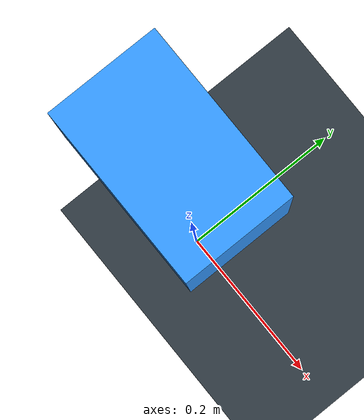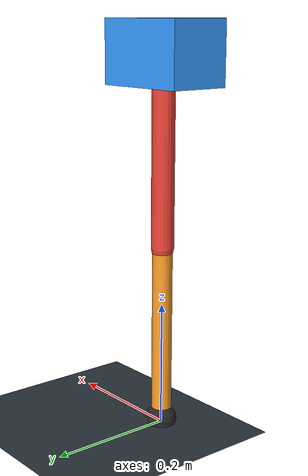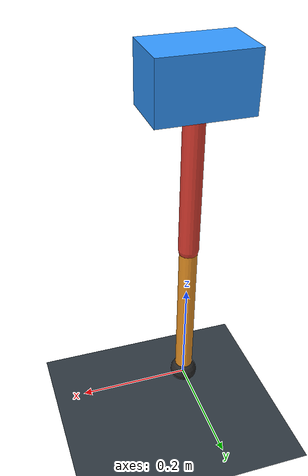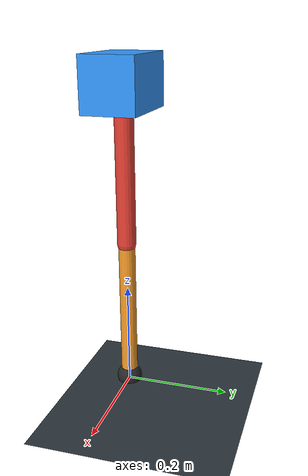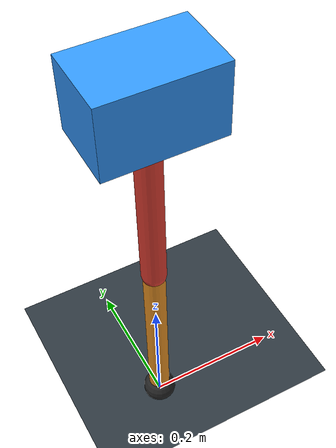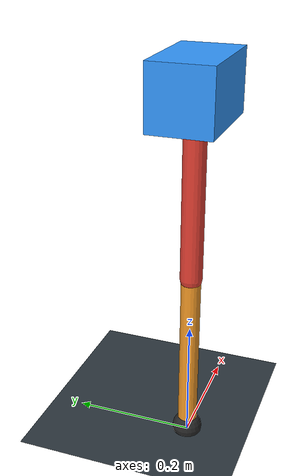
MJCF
<mujoco model="single_axis_two_bar">
  <compiler angle="radian" inertiafromgeom="true"/>
  <option timestep="0.001" integrator="implicitfast" gravity="0 0 -9.81"/>
  <default>
    <joint damping="0.08"/>
    <geom friction="1.2 0.01 0.0001" condim="3"/>
  </default>
  <worldbody>
    <geom name="floor" type="plane" size="5 5 0.1" rgba="0.18 0.22 0.25 1"/>
    <body name="carriage" pos="0 0 0.5948298330848032">
      <joint name="pole_slide" type="slide" axis="0 0 1"/>
      <geom name="payload" type="box" size="0.08 0.05 0.05" mass="2.1681579367875368" rgba="0.2 0.6 1 1"/>
      <body name="thigh" pos="0 0 0">
        <joint name="hip" type="hinge" axis="0 1 0"/>
        <geom name="thigh_link" type="capsule" fromto="0 0 0 0 0 -0.30172594489684607" size="0.018" mass="0.21498372269560195" rgba="0.9 0.25 0.2 1"/>
        <body name="shank" pos="0 0 -0.30172594489684607">
          <joint name="knee" type="hinge" axis="0 1 0"/>
          <geom name="shank_link" type="capsule" fromto="0 0 0 0 0 -0.2857274912730542" size="0.016" mass="0.20358461308773718" rgba="0.95 0.6 0.15 1"/>
          <geom name="foot" type="sphere" pos="0 0 -0.2857274912730542" size="0.025" mass="0.03" rgba="0.15 0.15 0.15 1"/>
          <site name="toe" pos="0 0 -0.2857274912730542" size="0.008"/>
        </body>
      </body>
    </body>
  </worldbody>
  <actuator>
    <motor name="hip_motor" joint="hip" ctrlrange="-23.970881995815365 23.970881995815365"/>
    <motor name="knee_motor" joint="knee" ctrlrange="-38.214457985472556 38.214457985472556"/>
  </actuator>
</mujoco>
